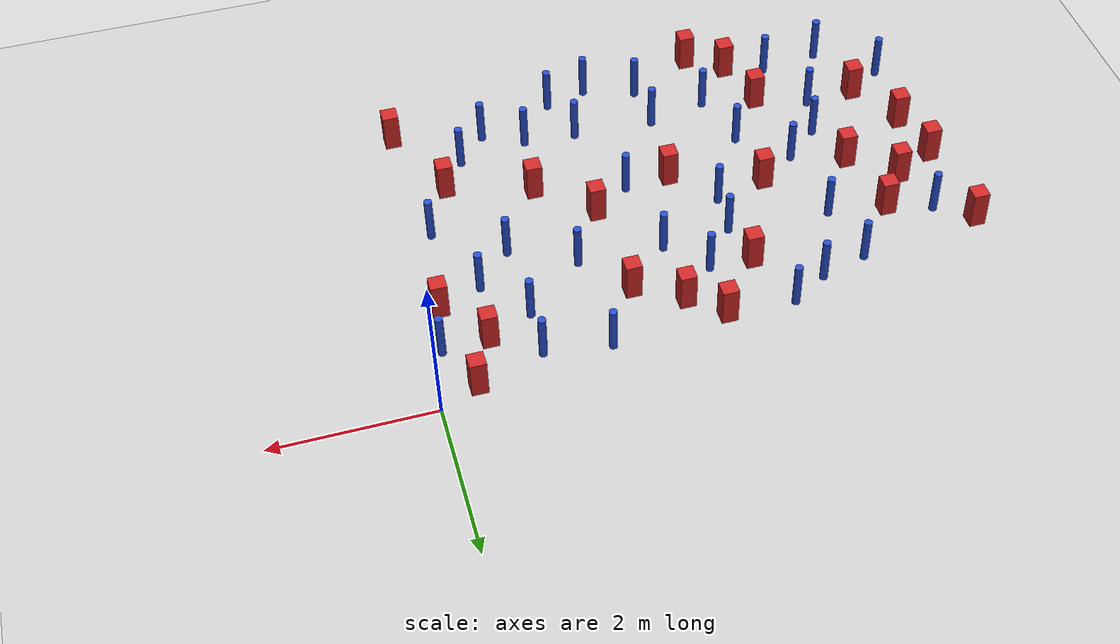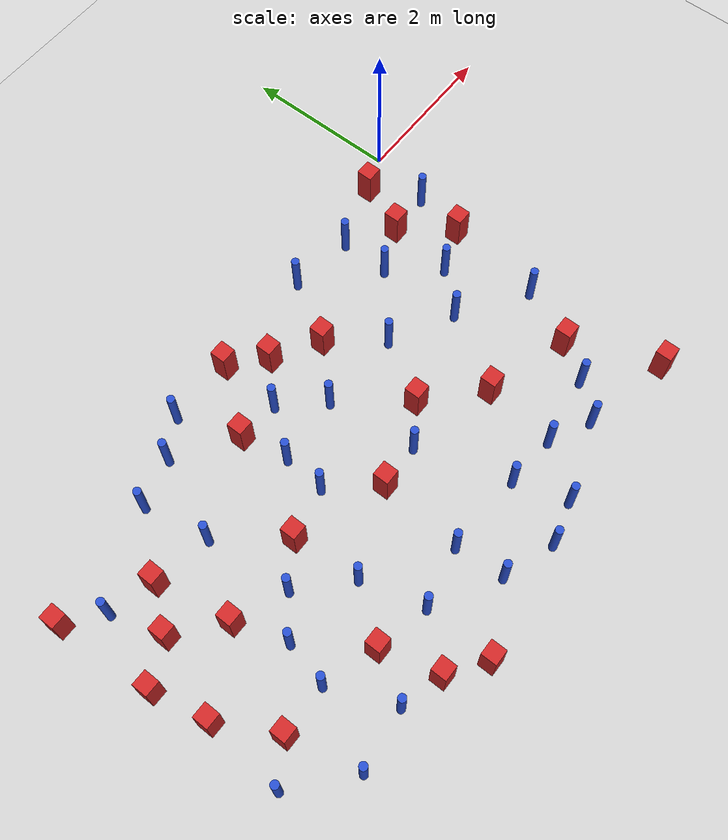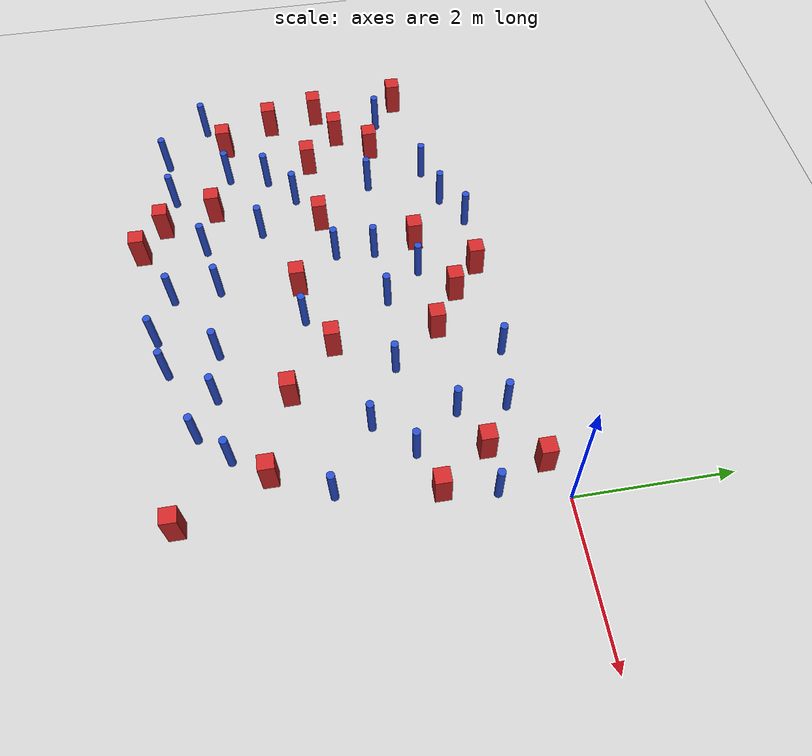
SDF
<sdf version="1.6">
 <world name="default">
  <model name="ground_plane">
   <static>1</static>
   <link name="link">
    <collision name="collision">
     <geometry><plane><normal>0 0 1</normal><size>100 100</size></plane></geometry>
     <surface><friction><ode><mu>100</mu><mu2>50</mu2></ode></friction></surface>
    </collision>
    <visual name="visual">
     <cast_shadows>0</cast_shadows>
     <geometry><plane><normal>0 0 1</normal><size>100 100</size></plane></geometry>
     <material>
      <ambient>1.0 1.0 1.0 1.0</ambient>
      <diffuse>0.8 0.8 0.8 1.0</diffuse>
      <specular>0.01 0.01 0.01 1.000000</specular>
     </material>
    </visual>
   </link>
  </model>
  <model name="square_post_obstacle1">
   <static>true</static>
   <pose>-4.90250389428 -4.65305402818 8.22691968438e-08 7.22125133819e-06 -7.54495500217e-07 2.29674213826e-05</pose>
   <link name="link">
    <pose>0 0 0.25 0 -0 0</pose>
    <inertial>
     <mass>100</mass>
     <inertia>
      <ixx>0.166667</ixx>
      <ixy>0</ixy>
      <ixz>0</ixz>
      <iyy>0.166667</iyy>
      <iyz>0</iyz>
      <izz>0.166667</izz>
     </inertia>
    </inertial>
    <collision name="collision"><geometry><box><size>.2 .2 .5</size></box></geometry></collision>
    <visual name="visual">
     <geometry><box><size>.2 .2 .5</size></box></geometry>
     <material>
      <script><name>Gazebo/Red</name><uri>file://media/materials/scripts/gazebo.material</uri></script>
     </material>
    </visual>
   </link>
  </model>
  <model name="square_post_obstacle2">
   <static>true</static>
   <pose>-0.308446318103 -1.4751853889 8.22691968438e-08 7.2212513382e-06 -7.54495500217e-07 2.29674213826e-05</pose>
   <link name="link">
    <pose>0 0 0.25 0 -0 0</pose>
    <inertial>
     <mass>100</mass>
     <inertia>
      <ixx>0.166667</ixx>
      <ixy>0</ixy>
      <ixz>0</ixz>
      <iyy>0.166667</iyy>
      <iyz>0</iyz>
      <izz>0.166667</izz>
     </inertia>
    </inertial>
    <collision name="collision"><geometry><box><size>.2 .2 .5</size></box></geometry></collision>
    <visual name="visual">
     <geometry><box><size>.2 .2 .5</size></box></geometry>
     <material>
      <script><name>Gazebo/Red</name><uri>file://media/materials/scripts/gazebo.material</uri></script>
     </material>
    </visual>
   </link>
  </model>
  <model name="pole_obstacle8">
   <static>true</static>
   <pose>-3.14532580014 -1.7083198443 2.88873142074e-08 -9.90536689395e-09 4.60219949e-07 -1.20965994953e-07</pose>
   <link name="link">
    <pose>0 0 0.3 0 -0 0</pose>
    <inertial>
     <mass>1</mass>
     <inertia><ixx>0.145833</ixx><ixy>0</ixy><ixz>0</ixz><iyy>0.145833</iyy><iyz>0</iyz><izz>0.125</izz></inertia>
    </inertial>
    <collision name="collision">
     <geometry><cylinder><radius>0.05</radius><length>.6</length></cylinder></geometry>
    </collision>
    <visual name="visual">
     <geometry><cylinder><radius>0.05</radius><length>.6</length></cylinder></geometry>
     <material>
      <script><name>Gazebo/Blue</name><uri>file://media/materials/scripts/gazebo.material</uri></script>
     </material>
    </visual>
   </link>
  </model>
  <model name="pole_obstacle9">
   <static>true</static>
   <pose>-5.29403124676 -1.7001412889 2.88873142074e-08 -9.90536689445e-09 4.60219948999e-07 -1.20965994956e-07</pose>
   <link name="link">
    <pose>0 0 0.3 0 -0 0</pose>
    <inertial>
     <mass>1</mass>
     <inertia><ixx>0.145833</ixx><ixy>0</ixy><ixz>0</ixz><iyy>0.145833</iyy><iyz>0</iyz><izz>0.125</izz></inertia>
    </inertial>
    <collision name="collision">
     <geometry><cylinder><radius>0.05</radius><length>.6</length></cylinder></geometry>
    </collision>
    <visual name="visual">
     <geometry><cylinder><radius>0.05</radius><length>.6</length></cylinder></geometry>
     <material>
      <script><name>Gazebo/Blue</name><uri>file://media/materials/scripts/gazebo.material</uri></script>
     </material>
    </visual>
   </link>
  </model>
  <model name="pole_obstacle10">
   <static>true</static>
   <pose>-1.29376996693 -2.16636897197 2.88873142074e-08 -9.90536689791e-09 4.6021994899e-07 -1.20965994959e-07</pose>
   <link name="link">
    <pose>0 0 0.3 0 -0 0</pose>
    <inertial>
     <mass>1</mass>
     <inertia><ixx>0.145833</ixx><ixy>0</ixy><ixz>0</ixz><iyy>0.145833</iyy><iyz>0</iyz><izz>0.125</izz></inertia>
    </inertial>
    <collision name="collision">
     <geometry><cylinder><radius>0.05</radius><length>.6</length></cylinder></geometry>
    </collision>
    <visual name="visual">
     <geometry><cylinder><radius>0.05</radius><length>.6</length></cylinder></geometry>
     <material>
      <script><name>Gazebo/Blue</name><uri>file://media/materials/scripts/gazebo.material</uri></script>
     </material>
    </visual>
   </link>
  </model>
  <model name="pole_obstacle11">
   <static>true</static>
   <pose>-2.08052585455 -1.75644054801 2.88873142074e-08 -9.90536689395e-09 4.60219949e-07 -1.20965994953e-07</pose>
   <link name="link">
    <pose>0 0 0.3 0 -0 0</pose>
    <inertial>
     <mass>1</mass>
     <inertia><ixx>0.145833</ixx><ixy>0</ixy><ixz>0</ixz><iyy>0.145833</iyy><iyz>0</iyz><izz>0.125</izz></inertia>
    </inertial>
    <collision name="collision">
     <geometry><cylinder><radius>0.05</radius><length>.6</length></cylinder></geometry>
    </collision>
    <visual name="visual">
     <geometry><cylinder><radius>0.05</radius><length>.6</length></cylinder></geometry>
     <material>
      <script><name>Gazebo/Blue</name><uri>file://media/materials/scripts/gazebo.material</uri></script>
     </material>
    </visual>
   </link>
  </model>
  <model name="square_post_obstacle11">
   <static>true</static>
   <pose>-0.48001669954 -0.202716693142 8.22691968438e-08 7.2212513382e-06 -7.54495500217e-07 2.29674213826e-05</pose>
   <link name="link">
    <pose>0 0 0.25 0 -0 0</pose>
    <inertial>
     <mass>100</mass>
     <inertia>
      <ixx>0.166667</ixx>
      <ixy>0</ixy>
      <ixz>0</ixz>
      <iyy>0.166667</iyy>
      <iyz>0</iyz>
      <izz>0.166667</izz>
     </inertia>
    </inertial>
    <collision name="collision"><geometry><box><size>.2 .2 .5</size></box></geometry></collision>
    <visual name="visual">
     <geometry><box><size>.2 .2 .5</size></box></geometry>
     <material>
      <script><name>Gazebo/Red</name><uri>file://media/materials/scripts/gazebo.material</uri></script>
     </material>
    </visual>
   </link>
  </model>
  <model name="pole_obstacle18">
   <static>true</static>
   <pose>-1.31122346371 -0.481827673898 2.88873142074e-08 -9.90536689816e-09 4.6021994899e-07 -1.2096599496e-07</pose>
   <link name="link">
    <pose>0 0 0.3 0 -0 0</pose>
    <inertial>
     <mass>1</mass>
     <inertia><ixx>0.145833</ixx><ixy>0</ixy><ixz>0</ixz><iyy>0.145833</iyy><iyz>0</iyz><izz>0.125</izz></inertia>
    </inertial>
    <collision name="collision">
     <geometry><cylinder><radius>0.05</radius><length>.6</length></cylinder></geometry>
    </collision>
    <visual name="visual">
     <geometry><cylinder><radius>0.05</radius><length>.6</length></cylinder></geometry>
     <material>
      <script><name>Gazebo/Blue</name><uri>file://media/materials/scripts/gazebo.material</uri></script>
     </material>
    </visual>
   </link>
  </model>
  <model name="square_post_obstacle17">
   <static>true</static>
   <pose>-4.45516431018 -4.96692957895 8.22691968438e-08 7.2212513382e-06 -7.54495500217e-07 2.29674213826e-05</pose>
   <link name="link">
    <pose>0 0 0.25 0 -0 0</pose>
    <inertial>
     <mass>100</mass>
     <inertia>
      <ixx>0.166667</ixx>
      <ixy>0</ixy>
      <ixz>0</ixz>
      <iyy>0.166667</iyy>
      <iyz>0</iyz>
      <izz>0.166667</izz>
     </inertia>
    </inertial>
    <collision name="collision"><geometry><box><size>.2 .2 .5</size></box></geometry></collision>
    <visual name="visual">
     <geometry><box><size>.2 .2 .5</size></box></geometry>
     <material>
      <script><name>Gazebo/Red</name><uri>file://media/materials/scripts/gazebo.material</uri></script>
     </material>
    </visual>
   </link>
  </model>
  <model name="pole_obstacle31">
   <static>true</static>
   <pose>-3.66986476978 -3.92634257438 2.88873142074e-08 -9.90536690232e-09 4.6021994898e-07 -1.20965994968e-07</pose>
   <link name="link">
    <pose>0 0 0.3 0 -0 0</pose>
    <inertial>
     <mass>1</mass>
     <inertia><ixx>0.145833</ixx><ixy>0</ixy><ixz>0</ixz><iyy>0.145833</iyy><iyz>0</iyz><izz>0.125</izz></inertia>
    </inertial>
    <collision name="collision">
     <geometry><cylinder><radius>0.05</radius><length>.6</length></cylinder></geometry>
    </collision>
    <visual name="visual">
     <geometry><cylinder><radius>0.05</radius><length>.6</length></cylinder></geometry>
     <material>
      <script><name>Gazebo/Blue</name><uri>file://media/materials/scripts/gazebo.material</uri></script>
     </material>
    </visual>
   </link>
  </model>
  <model name="square_post_obstacle24">
   <static>true</static>
   <pose>-4.69520800312 -2.4573369972 8.22691968438e-08 7.2212513382e-06 -7.54495500217e-07 2.29674213826e-05</pose>
   <link name="link">
    <pose>0 0 0.25 0 -0 0</pose>
    <inertial>
     <mass>100</mass>
     <inertia>
      <ixx>0.166667</ixx>
      <ixy>0</ixy>
      <ixz>0</ixz>
      <iyy>0.166667</iyy>
      <iyz>0</iyz>
      <izz>0.166667</izz>
     </inertia>
    </inertial>
    <collision name="collision"><geometry><box><size>.2 .2 .5</size></box></geometry></collision>
    <visual name="visual">
     <geometry><box><size>.2 .2 .5</size></box></geometry>
     <material>
      <script><name>Gazebo/Red</name><uri>file://media/materials/scripts/gazebo.material</uri></script>
     </material>
    </visual>
   </link>
  </model>
  <model name="square_post_obstacle25">
   <static>true</static>
   <pose>-6.99715480253 -1.08542244754 8.22691968438e-08 7.22125133819e-06 -7.54495500217e-07 2.29674213826e-05</pose>
   <link name="link">
    <pose>0 0 0.25 0 -0 0</pose>
    <inertial>
     <mass>100</mass>
     <inertia>
      <ixx>0.166667</ixx>
      <ixy>0</ixy>
      <ixz>0</ixz>
      <iyy>0.166667</iyy>
      <iyz>0</iyz>
      <izz>0.166667</izz>
     </inertia>
    </inertial>
    <collision name="collision"><geometry><box><size>.2 .2 .5</size></box></geometry></collision>
    <visual name="visual">
     <geometry><box><size>.2 .2 .5</size></box></geometry>
     <material>
      <script><name>Gazebo/Red</name><uri>file://media/materials/scripts/gazebo.material</uri></script>
     </material>
    </visual>
   </link>
  </model>
  <model name="pole_obstacle36">
   <static>true</static>
   <pose>-0.845985613089 -1.686237765 2.88873142074e-08 -9.90536689855e-09 4.60219948989e-07 -1.20965994962e-07</pose>
   <link name="link">
    <pose>0 0 0.3 0 -0 0</pose>
    <inertial>
     <mass>1</mass>
     <inertia><ixx>0.145833</ixx><ixy>0</ixy><ixz>0</ixz><iyy>0.145833</iyy><iyz>0</iyz><izz>0.125</izz></inertia>
    </inertial>
    <collision name="collision">
     <geometry><cylinder><radius>0.05</radius><length>.6</length></cylinder></geometry>
    </collision>
    <visual name="visual">
     <geometry><cylinder><radius>0.05</radius><length>.6</length></cylinder></geometry>
     <material>
      <script><name>Gazebo/Blue</name><uri>file://media/materials/scripts/gazebo.material</uri></script>
     </material>
    </visual>
   </link>
  </model>
  <model name="pole_obstacle39">
   <static>true</static>
   <pose>-5.7633618264 -3.71721501685 2.88873142074e-08 -9.90536690245e-09 4.6021994898e-07 -1.20965994966e-07</pose>
   <link name="link">
    <pose>0 0 0.3 0 -0 0</pose>
    <inertial>
     <mass>1</mass>
     <inertia><ixx>0.145833</ixx><ixy>0</ixy><ixz>0</ixz><iyy>0.145833</iyy><iyz>0</iyz><izz>0.125</izz></inertia>
    </inertial>
    <collision name="collision">
     <geometry><cylinder><radius>0.05</radius><length>.6</length></cylinder></geometry>
    </collision>
    <visual name="visual">
     <geometry><cylinder><radius>0.05</radius><length>.6</length></cylinder></geometry>
     <material>
      <script><name>Gazebo/Blue</name><uri>file://media/materials/scripts/gazebo.material</uri></script>
     </material>
    </visual>
   </link>
  </model>
  <model name="pole_obstacle40">
   <static>true</static>
   <pose>-6.1890119681 -4.60966932109 2.88873142074e-08 -9.90536690842e-09 4.60219948965e-07 -1.20965994976e-07</pose>
   <link name="link">
    <pose>0 0 0.3 0 -0 0</pose>
    <inertial>
     <mass>1</mass>
     <inertia><ixx>0.145833</ixx><ixy>0</ixy><ixz>0</ixz><iyy>0.145833</iyy><iyz>0</iyz><izz>0.125</izz></inertia>
    </inertial>
    <collision name="collision">
     <geometry><cylinder><radius>0.05</radius><length>.6</length></cylinder></geometry>
    </collision>
    <visual name="visual">
     <geometry><cylinder><radius>0.05</radius><length>.6</length></cylinder></geometry>
     <material>
      <script><name>Gazebo/Blue</name><uri>file://media/materials/scripts/gazebo.material</uri></script>
     </material>
    </visual>
   </link>
  </model>
  <model name="square_post_obstacle32">
   <static>true</static>
   <pose>-6.38428217243 -2.06748060398 8.22691968438e-08 7.2212513382e-06 -7.54495500217e-07 2.29674213826e-05</pose>
   <link name="link">
    <pose>0 0 0.25 0 -0 0</pose>
    <inertial>
     <mass>100</mass>
     <inertia>
      <ixx>0.166667</ixx>
      <ixy>0</ixy>
      <ixz>0</ixz>
      <iyy>0.166667</iyy>
      <iyz>0</iyz>
      <izz>0.166667</izz>
     </inertia>
    </inertial>
    <collision name="collision"><geometry><box><size>.2 .2 .5</size></box></geometry></collision>
    <visual name="visual">
     <geometry><box><size>.2 .2 .5</size></box></geometry>
     <material>
      <script><name>Gazebo/Red</name><uri>file://media/materials/scripts/gazebo.material</uri></script>
     </material>
    </visual>
   </link>
  </model>
  <model name="square_post_obstacle33">
   <static>true</static>
   <pose>-4.11699143183 -1.19094280833 8.22691968438e-08 7.2212513382e-06 -7.54495500217e-07 2.29674213826e-05</pose>
   <link name="link">
    <pose>0 0 0.25 0 -0 0</pose>
    <inertial>
     <mass>100</mass>
     <inertia>
      <ixx>0.166667</ixx>
      <ixy>0</ixy>
      <ixz>0</ixz>
      <iyy>0.166667</iyy>
      <iyz>0</iyz>
      <izz>0.166667</izz>
     </inertia>
    </inertial>
    <collision name="collision"><geometry><box><size>.2 .2 .5</size></box></geometry></collision>
    <visual name="visual">
     <geometry><box><size>.2 .2 .5</size></box></geometry>
     <material>
      <script><name>Gazebo/Red</name><uri>file://media/materials/scripts/gazebo.material</uri></script>
     </material>
    </visual>
   </link>
  </model>
  <model name="pole_obstacle43">
   <static>true</static>
   <pose>-0.468239323174 -2.71466232398 2.88873142074e-08 -9.90536689335e-09 4.60219949001e-07 -1.20965994953e-07</pose>
   <link name="link">
    <pose>0 0 0.3 0 -0 0</pose>
    <inertial>
     <mass>1</mass>
     <inertia><ixx>0.145833</ixx><ixy>0</ixy><ixz>0</ixz><iyy>0.145833</iyy><iyz>0</iyz><izz>0.125</izz></inertia>
    </inertial>
    <collision name="collision">
     <geometry><cylinder><radius>0.05</radius><length>.6</length></cylinder></geometry>
    </collision>
    <visual name="visual">
     <geometry><cylinder><radius>0.05</radius><length>.6</length></cylinder></geometry>
     <material>
      <script><name>Gazebo/Blue</name><uri>file://media/materials/scripts/gazebo.material</uri></script>
     </material>
    </visual>
   </link>
  </model>
  <model name="pole_obstacle47">
   <static>true</static>
   <pose>-4.39533489209 -0.41681256304 2.88873142074e-08 -9.90536689981e-09 4.60219948986e-07 -1.20965994962e-07</pose>
   <link name="link">
    <pose>0 0 0.3 0 -0 0</pose>
    <inertial>
     <mass>1</mass>
     <inertia><ixx>0.145833</ixx><ixy>0</ixy><ixz>0</ixz><iyy>0.145833</iyy><iyz>0</iyz><izz>0.125</izz></inertia>
    </inertial>
    <collision name="collision">
     <geometry><cylinder><radius>0.05</radius><length>.6</length></cylinder></geometry>
    </collision>
    <visual name="visual">
     <geometry><cylinder><radius>0.05</radius><length>.6</length></cylinder></geometry>
     <material>
      <script><name>Gazebo/Blue</name><uri>file://media/materials/scripts/gazebo.material</uri></script>
     </material>
    </visual>
   </link>
  </model>
  <model name="pole_obstacle65">
   <static>true</static>
   <pose>-3.58580292451 -1.22319693321 2.88873142074e-08 -9.90536689395e-09 4.60219949e-07 -1.20965994953e-07</pose>
   <link name="link">
    <pose>0 0 0.3 0 -0 0</pose>
    <inertial>
     <mass>1</mass>
     <inertia><ixx>0.145833</ixx><ixy>0</ixy><ixz>0</ixz><iyy>0.145833</iyy><iyz>0</iyz><izz>0.125</izz></inertia>
    </inertial>
    <collision name="collision">
     <geometry><cylinder><radius>0.05</radius><length>.6</length></cylinder></geometry>
    </collision>
    <visual name="visual">
     <geometry><cylinder><radius>0.05</radius><length>.6</length></cylinder></geometry>
     <material>
      <script><name>Gazebo/Blue</name><uri>file://media/materials/scripts/gazebo.material</uri></script>
     </material>
    </visual>
   </link>
  </model>
  <model name="pole_obstacle74">
   <static>true</static>
   <pose>-2.64215423078 -3.97562874621 2.88873142074e-08 -9.90536690455e-09 4.60219948975e-07 -1.20965994972e-07</pose>
   <link name="link">
    <pose>0 0 0.3 0 -0 0</pose>
    <inertial>
     <mass>1</mass>
     <inertia><ixx>0.145833</ixx><ixy>0</ixy><ixz>0</ixz><iyy>0.145833</iyy><iyz>0</iyz><izz>0.125</izz></inertia>
    </inertial>
    <collision name="collision">
     <geometry><cylinder><radius>0.05</radius><length>.6</length></cylinder></geometry>
    </collision>
    <visual name="visual">
     <geometry><cylinder><radius>0.05</radius><length>.6</length></cylinder></geometry>
     <material>
      <script><name>Gazebo/Blue</name><uri>file://media/materials/scripts/gazebo.material</uri></script>
     </material>
    </visual>
   </link>
  </model>
  <model name="square_post_obstacle70">
   <static>true</static>
   <pose>-6.76990471203 -3.03877279179 8.22691968438e-08 7.2212513382e-06 -7.54495500217e-07 2.29674213826e-05</pose>
   <link name="link">
    <pose>0 0 0.25 0 -0 0</pose>
    <inertial>
     <mass>100</mass>
     <inertia>
      <ixx>0.166667</ixx>
      <ixy>0</ixy>
      <ixz>0</ixz>
      <iyy>0.166667</iyy>
      <iyz>0</iyz>
      <izz>0.166667</izz>
     </inertia>
    </inertial>
    <collision name="collision"><geometry><box><size>.2 .2 .5</size></box></geometry></collision>
    <visual name="visual">
     <geometry><box><size>.2 .2 .5</size></box></geometry>
     <material>
      <script><name>Gazebo/Red</name><uri>file://media/materials/scripts/gazebo.material</uri></script>
     </material>
    </visual>
   </link>
  </model>
  <model name="square_post_obstacle71">
   <static>true</static>
   <pose>-2.52225515285 -2.5053306626 8.22691968438e-08 7.2212513382e-06 -7.54495500217e-07 2.29674213826e-05</pose>
   <link name="link">
    <pose>0 0 0.25 0 -0 0</pose>
    <inertial>
     <mass>100</mass>
     <inertia>
      <ixx>0.166667</ixx>
      <ixy>0</ixy>
      <ixz>0</ixz>
      <iyy>0.166667</iyy>
      <iyz>0</iyz>
      <izz>0.166667</izz>
     </inertia>
    </inertial>
    <collision name="collision"><geometry><box><size>.2 .2 .5</size></box></geometry></collision>
    <visual name="visual">
     <geometry><box><size>.2 .2 .5</size></box></geometry>
     <material>
      <script><name>Gazebo/Red</name><uri>file://media/materials/scripts/gazebo.material</uri></script>
     </material>
    </visual>
   </link>
  </model>
  <model name="pole_obstacle83">
   <static>true</static>
   <pose>-4.62339866084 -3.30456656948 2.88873142074e-08 -9.90536690245e-09 4.6021994898e-07 -1.20965994966e-07</pose>
   <link name="link">
    <pose>0 0 0.3 0 -0 0</pose>
    <inertial>
     <mass>1</mass>
     <inertia><ixx>0.145833</ixx><ixy>0</ixy><ixz>0</ixz><iyy>0.145833</iyy><iyz>0</iyz><izz>0.125</izz></inertia>
    </inertial>
    <collision name="collision">
     <geometry><cylinder><radius>0.05</radius><length>.6</length></cylinder></geometry>
    </collision>
    <visual name="visual">
     <geometry><cylinder><radius>0.05</radius><length>.6</length></cylinder></geometry>
     <material>
      <script><name>Gazebo/Blue</name><uri>file://media/materials/scripts/gazebo.material</uri></script>
     </material>
    </visual>
   </link>
  </model>
  <model name="square_post_obstacle73">
   <static>true</static>
   <pose>-5.83771528304 -2.52779519146 8.22691968438e-08 7.2212513382e-06 -7.54495500217e-07 2.29674213826e-05</pose>
   <link name="link">
    <pose>0 0 0.25 0 -0 0</pose>
    <inertial>
     <mass>100</mass>
     <inertia>
      <ixx>0.166667</ixx>
      <ixy>0</ixy>
      <ixz>0</ixz>
      <iyy>0.166667</iyy>
      <iyz>0</iyz>
      <izz>0.166667</izz>
     </inertia>
    </inertial>
    <collision name="collision"><geometry><box><size>.2 .2 .5</size></box></geometry></collision>
    <visual name="visual">
     <geometry><box><size>.2 .2 .5</size></box></geometry>
     <material>
      <script><name>Gazebo/Red</name><uri>file://media/materials/scripts/gazebo.material</uri></script>
     </material>
    </visual>
   </link>
  </model>
  <model name="pole_obstacle89">
   <static>true</static>
   <pose>-5.19149411698 -2.78249253676 2.88873142074e-08 -9.90536690245e-09 4.6021994898e-07 -1.20965994966e-07</pose>
   <link name="link">
    <pose>0 0 0.3 0 -0 0</pose>
    <inertial>
     <mass>1</mass>
     <inertia><ixx>0.145833</ixx><ixy>0</ixy><ixz>0</ixz><iyy>0.145833</iyy><iyz>0</iyz><izz>0.125</izz></inertia>
    </inertial>
    <collision name="collision">
     <geometry><cylinder><radius>0.05</radius><length>.6</length></cylinder></geometry>
    </collision>
    <visual name="visual">
     <geometry><cylinder><radius>0.05</radius><length>.6</length></cylinder></geometry>
     <material>
      <script><name>Gazebo/Blue</name><uri>file://media/materials/scripts/gazebo.material</uri></script>
     </material>
    </visual>
   </link>
  </model>
  <model name="pole_obstacle93">
   <static>true</static>
   <pose>-6.58297774825 -1.41544815508 2.88873142074e-08 -9.90536689445e-09 4.60219948999e-07 -1.20965994956e-07</pose>
   <link name="link">
    <pose>0 0 0.3 0 -0 0</pose>
    <inertial>
     <mass>1</mass>
     <inertia><ixx>0.145833</ixx><ixy>0</ixy><ixz>0</ixz><iyy>0.145833</iyy><iyz>0</iyz><izz>0.125</izz></inertia>
    </inertial>
    <collision name="collision">
     <geometry><cylinder><radius>0.05</radius><length>.6</length></cylinder></geometry>
    </collision>
    <visual name="visual">
     <geometry><cylinder><radius>0.05</radius><length>.6</length></cylinder></geometry>
     <material>
      <script><name>Gazebo/Blue</name><uri>file://media/materials/scripts/gazebo.material</uri></script>
     </material>
    </visual>
   </link>
  </model>
  <model name="square_post_obstacle92">
   <static>true</static>
   <pose>-6.39411485083 -3.74123339045 8.22691968438e-08 7.2212513382e-06 -7.54495500217e-07 2.29674213826e-05</pose>
   <link name="link">
    <pose>0 0 0.25 0 -0 0</pose>
    <inertial>
     <mass>100</mass>
     <inertia>
      <ixx>0.166667</ixx>
      <ixy>0</ixy>
      <ixz>0</ixz>
      <iyy>0.166667</iyy>
      <iyz>0</iyz>
      <izz>0.166667</izz>
     </inertia>
    </inertial>
    <collision name="collision"><geometry><box><size>.2 .2 .5</size></box></geometry></collision>
    <visual name="visual">
     <geometry><box><size>.2 .2 .5</size></box></geometry>
     <material>
      <script><name>Gazebo/Red</name><uri>file://media/materials/scripts/gazebo.material</uri></script>
     </material>
    </visual>
   </link>
  </model>
  <model name="square_post_obstacle95">
   <static>true</static>
   <pose>-0.807671067905 -3.4315773066 8.22691968438e-08 7.2212513382e-06 -7.54495500217e-07 2.29674213826e-05</pose>
   <link name="link">
    <pose>0 0 0.25 0 -0 0</pose>
    <inertial>
     <mass>100</mass>
     <inertia>
      <ixx>0.166667</ixx>
      <ixy>0</ixy>
      <ixz>0</ixz>
      <iyy>0.166667</iyy>
      <iyz>0</iyz>
      <izz>0.166667</izz>
     </inertia>
    </inertial>
    <collision name="collision"><geometry><box><size>.2 .2 .5</size></box></geometry></collision>
    <visual name="visual">
     <geometry><box><size>.2 .2 .5</size></box></geometry>
     <material>
      <script><name>Gazebo/Red</name><uri>file://media/materials/scripts/gazebo.material</uri></script>
     </material>
    </visual>
   </link>
  </model>
  <model name="pole_obstacle102">
   <static>true</static>
   <pose>-2.99999289444 -2.83109625751 2.88873142074e-08 -9.90536690232e-09 4.6021994898e-07 -1.20965994968e-07</pose>
   <link name="link">
    <pose>0 0 0.3 0 -0 0</pose>
    <inertial>
     <mass>1</mass>
     <inertia><ixx>0.145833</ixx><ixy>0</ixy><ixz>0</ixz><iyy>0.145833</iyy><iyz>0</iyz><izz>0.125</izz></inertia>
    </inertial>
    <collision name="collision">
     <geometry><cylinder><radius>0.05</radius><length>.6</length></cylinder></geometry>
    </collision>
    <visual name="visual">
     <geometry><cylinder><radius>0.05</radius><length>.6</length></cylinder></geometry>
     <material>
      <script><name>Gazebo/Blue</name><uri>file://media/materials/scripts/gazebo.material</uri></script>
     </material>
    </visual>
   </link>
  </model>
  <model name="square_post_obstacle111">
   <static>true</static>
   <pose>-5.09500419492 -3.94005390068 8.22691968438e-08 7.22125133819e-06 -7.54495500217e-07 2.29674213826e-05</pose>
   <link name="link">
    <pose>0 0 0.25 0 -0 0</pose>
    <inertial>
     <mass>100</mass>
     <inertia>
      <ixx>0.166667</ixx>
      <ixy>0</ixy>
      <ixz>0</ixz>
      <iyy>0.166667</iyy>
      <iyz>0</iyz>
      <izz>0.166667</izz>
     </inertia>
    </inertial>
    <collision name="collision"><geometry><box><size>.2 .2 .5</size></box></geometry></collision>
    <visual name="visual">
     <geometry><box><size>.2 .2 .5</size></box></geometry>
     <material>
      <script><name>Gazebo/Red</name><uri>file://media/materials/scripts/gazebo.material</uri></script>
     </material>
    </visual>
   </link>
  </model>
  <model name="pole_obstacle116">
   <static>true</static>
   <pose>-4.05134943315 -2.30843746079 2.88873142074e-08 -9.90536690245e-09 4.6021994898e-07 -1.20965994966e-07</pose>
   <link name="link">
    <pose>0 0 0.3 0 -0 0</pose>
    <inertial>
     <mass>1</mass>
     <inertia><ixx>0.145833</ixx><ixy>0</ixy><ixz>0</ixz><iyy>0.145833</iyy><iyz>0</iyz><izz>0.125</izz></inertia>
    </inertial>
    <collision name="collision">
     <geometry><cylinder><radius>0.05</radius><length>.6</length></cylinder></geometry>
    </collision>
    <visual name="visual">
     <geometry><cylinder><radius>0.05</radius><length>.6</length></cylinder></geometry>
     <material>
      <script><name>Gazebo/Blue</name><uri>file://media/materials/scripts/gazebo.material</uri></script>
     </material>
    </visual>
   </link>
  </model>
  <model name="pole_obstacle122">
   <static>true</static>
   <pose>-1.32309958075 -1.10722712176 2.88873142074e-08 -9.90536689672e-09 4.60219948993e-07 -1.20965994959e-07</pose>
   <link name="link">
    <pose>0 0 0.3 0 -0 0</pose>
    <inertial>
     <mass>1</mass>
     <inertia><ixx>0.145833</ixx><ixy>0</ixy><ixz>0</ixz><iyy>0.145833</iyy><iyz>0</iyz><izz>0.125</izz></inertia>
    </inertial>
    <collision name="collision">
     <geometry><cylinder><radius>0.05</radius><length>.6</length></cylinder></geometry>
    </collision>
    <visual name="visual">
     <geometry><cylinder><radius>0.05</radius><length>.6</length></cylinder></geometry>
     <material>
      <script><name>Gazebo/Blue</name><uri>file://media/materials/scripts/gazebo.material</uri></script>
     </material>
    </visual>
   </link>
  </model>
  <model name="pole_obstacle123">
   <static>true</static>
   <pose>-2.12375288016 -0.369285289775 2.88873142074e-08 -9.90536689307e-09 4.60219949002e-07 -1.20965994954e-07</pose>
   <link name="link">
    <pose>0 0 0.3 0 -0 0</pose>
    <inertial>
     <mass>1</mass>
     <inertia><ixx>0.145833</ixx><ixy>0</ixy><ixz>0</ixz><iyy>0.145833</iyy><iyz>0</iyz><izz>0.125</izz></inertia>
    </inertial>
    <collision name="collision">
     <geometry><cylinder><radius>0.05</radius><length>.6</length></cylinder></geometry>
    </collision>
    <visual name="visual">
     <geometry><cylinder><radius>0.05</radius><length>.6</length></cylinder></geometry>
     <material>
      <script><name>Gazebo/Blue</name><uri>file://media/materials/scripts/gazebo.material</uri></script>
     </material>
    </visual>
   </link>
  </model>
  <model name="pole_obstacle126">
   <static>true</static>
   <pose>-5.42852909034 -4.51044811579 2.88873142074e-08 -9.90536690842e-09 4.60219948965e-07 -1.20965994976e-07</pose>
   <link name="link">
    <pose>0 0 0.3 0 -0 0</pose>
    <inertial>
     <mass>1</mass>
     <inertia><ixx>0.145833</ixx><ixy>0</ixy><ixz>0</ixz><iyy>0.145833</iyy><iyz>0</iyz><izz>0.125</izz></inertia>
    </inertial>
    <collision name="collision">
     <geometry><cylinder><radius>0.05</radius><length>.6</length></cylinder></geometry>
    </collision>
    <visual name="visual">
     <geometry><cylinder><radius>0.05</radius><length>.6</length></cylinder></geometry>
     <material>
      <script><name>Gazebo/Blue</name><uri>file://media/materials/scripts/gazebo.material</uri></script>
     </material>
    </visual>
   </link>
  </model>
  <model name="pole_obstacle130">
   <static>true</static>
   <pose>-4.41940902588 -4.0909203812 2.88873142074e-08 -9.90536690842e-09 4.60219948965e-07 -1.20965994976e-07</pose>
   <link name="link">
    <pose>0 0 0.3 0 -0 0</pose>
    <inertial>
     <mass>1</mass>
     <inertia><ixx>0.145833</ixx><ixy>0</ixy><ixz>0</ixz><iyy>0.145833</iyy><iyz>0</iyz><izz>0.125</izz></inertia>
    </inertial>
    <collision name="collision">
     <geometry><cylinder><radius>0.05</radius><length>.6</length></cylinder></geometry>
    </collision>
    <visual name="visual">
     <geometry><cylinder><radius>0.05</radius><length>.6</length></cylinder></geometry>
     <material>
      <script><name>Gazebo/Blue</name><uri>file://media/materials/scripts/gazebo.material</uri></script>
     </material>
    </visual>
   </link>
  </model>
  <model name="square_post_obstacle128">
   <static>true</static>
   <pose>-2.57802505148 -1.13892832872 8.22691968438e-08 7.2212513382e-06 -7.54495500217e-07 2.29674213826e-05</pose>
   <link name="link">
    <pose>0 0 0.25 0 -0 0</pose>
    <inertial>
     <mass>100</mass>
     <inertia>
      <ixx>0.166667</ixx>
      <ixy>0</ixy>
      <ixz>0</ixz>
      <iyy>0.166667</iyy>
      <iyz>0</iyz>
      <izz>0.166667</izz>
     </inertia>
    </inertial>
    <collision name="collision"><geometry><box><size>.2 .2 .5</size></box></geometry></collision>
    <visual name="visual">
     <geometry><box><size>.2 .2 .5</size></box></geometry>
     <material>
      <script><name>Gazebo/Red</name><uri>file://media/materials/scripts/gazebo.material</uri></script>
     </material>
    </visual>
   </link>
  </model>
  <model name="square_post_obstacle130">
   <static>true</static>
   <pose>-3.14482023223 -0.795310296461 8.22691968438e-08 7.2212513382e-06 -7.54495500217e-07 2.29674213826e-05</pose>
   <link name="link">
    <pose>0 0 0.25 0 -0 0</pose>
    <inertial>
     <mass>100</mass>
     <inertia>
      <ixx>0.166667</ixx>
      <ixy>0</ixy>
      <ixz>0</ixz>
      <iyy>0.166667</iyy>
      <iyz>0</iyz>
      <izz>0.166667</izz>
     </inertia>
    </inertial>
    <collision name="collision"><geometry><box><size>.2 .2 .5</size></box></geometry></collision>
    <visual name="visual">
     <geometry><box><size>.2 .2 .5</size></box></geometry>
     <material>
      <script><name>Gazebo/Red</name><uri>file://media/materials/scripts/gazebo.material</uri></script>
     </material>
    </visual>
   </link>
  </model>
  <model name="pole_obstacle139">
   <static>true</static>
   <pose>-2.97321988332 -4.76730106355 2.88873142074e-08 -9.90536689859e-09 4.60219948989e-07 -1.20965994961e-07</pose>
   <link name="link">
    <pose>0 0 0.3 0 -0 0</pose>
    <inertial>
     <mass>1</mass>
     <inertia><ixx>0.145833</ixx><ixy>0</ixy><ixz>0</ixz><iyy>0.145833</iyy><iyz>0</iyz><izz>0.125</izz></inertia>
    </inertial>
    <collision name="collision">
     <geometry><cylinder><radius>0.05</radius><length>.6</length></cylinder></geometry>
    </collision>
    <visual name="visual">
     <geometry><cylinder><radius>0.05</radius><length>.6</length></cylinder></geometry>
     <material>
      <script><name>Gazebo/Blue</name><uri>file://media/materials/scripts/gazebo.material</uri></script>
     </material>
    </visual>
   </link>
  </model>
  <model name="pole_obstacle146">
   <static>true</static>
   <pose>-1.10596092318 -3.87887900118 2.88873142074e-08 -9.90536689791e-09 4.6021994899e-07 -1.20965994959e-07</pose>
   <link name="link">
    <pose>0 0 0.3 0 -0 0</pose>
    <inertial>
     <mass>1</mass>
     <inertia><ixx>0.145833</ixx><ixy>0</ixy><ixz>0</ixz><iyy>0.145833</iyy><iyz>0</iyz><izz>0.125</izz></inertia>
    </inertial>
    <collision name="collision">
     <geometry><cylinder><radius>0.05</radius><length>.6</length></cylinder></geometry>
    </collision>
    <visual name="visual">
     <geometry><cylinder><radius>0.05</radius><length>.6</length></cylinder></geometry>
     <material>
      <script><name>Gazebo/Blue</name><uri>file://media/materials/scripts/gazebo.material</uri></script>
     </material>
    </visual>
   </link>
  </model>
  <model name="square_post_obstacle160">
   <static>true</static>
   <pose>-1.86937038108 -3.10740246124 8.22691968438e-08 7.2212513382e-06 -7.54495500217e-07 2.29674213826e-05</pose>
   <link name="link">
    <pose>0 0 0.25 0 -0 0</pose>
    <inertial>
     <mass>100</mass>
     <inertia>
      <ixx>0.166667</ixx>
      <ixy>0</ixy>
      <ixz>0</ixz>
      <iyy>0.166667</iyy>
      <iyz>0</iyz>
      <izz>0.166667</izz>
     </inertia>
    </inertial>
    <collision name="collision"><geometry><box><size>.2 .2 .5</size></box></geometry></collision>
    <visual name="visual">
     <geometry><box><size>.2 .2 .5</size></box></geometry>
     <material>
      <script><name>Gazebo/Red</name><uri>file://media/materials/scripts/gazebo.material</uri></script>
     </material>
    </visual>
   </link>
  </model>
  <model name="square_post_obstacle165">
   <static>true</static>
   <pose>-6.9078566823 -2.33493683075 8.22691968438e-08 7.2212513382e-06 -7.54495500217e-07 2.29674213826e-05</pose>
   <link name="link">
    <pose>0 0 0.25 0 -0 0</pose>
    <inertial>
     <mass>100</mass>
     <inertia>
      <ixx>0.166667</ixx>
      <ixy>0</ixy>
      <ixz>0</ixz>
      <iyy>0.166667</iyy>
      <iyz>0</iyz>
      <izz>0.166667</izz>
     </inertia>
    </inertial>
    <collision name="collision"><geometry><box><size>.2 .2 .5</size></box></geometry></collision>
    <visual name="visual">
     <geometry><box><size>.2 .2 .5</size></box></geometry>
     <material>
      <script><name>Gazebo/Red</name><uri>file://media/materials/scripts/gazebo.material</uri></script>
     </material>
    </visual>
   </link>
  </model>
  <model name="square_post_obstacle168">
   <static>true</static>
   <pose>-0.340743177679 -4.52479874385 8.22691968438e-08 7.2212513382e-06 -7.54495500217e-07 2.29674213826e-05</pose>
   <link name="link">
    <pose>0 0 0.25 0 -0 0</pose>
    <inertial>
     <mass>100</mass>
     <inertia>
      <ixx>0.166667</ixx>
      <ixy>0</ixy>
      <ixz>0</ixz>
      <iyy>0.166667</iyy>
      <iyz>0</iyz>
      <izz>0.166667</izz>
     </inertia>
    </inertial>
    <collision name="collision"><geometry><box><size>.2 .2 .5</size></box></geometry></collision>
    <visual name="visual">
     <geometry><box><size>.2 .2 .5</size></box></geometry>
     <material>
      <script><name>Gazebo/Red</name><uri>file://media/materials/scripts/gazebo.material</uri></script>
     </material>
    </visual>
   </link>
  </model>
  <model name="pole_obstacle171">
   <static>true</static>
   <pose>-4.0068963319 -1.77428216294 2.88873142074e-08 -9.9053668946e-09 4.60219948998e-07 -1.20965994956e-07</pose>
   <link name="link">
    <pose>0 0 0.3 0 -0 0</pose>
    <inertial>
     <mass>1</mass>
     <inertia><ixx>0.145833</ixx><ixy>0</ixy><ixz>0</ixz><iyy>0.145833</iyy><iyz>0</iyz><izz>0.125</izz></inertia>
    </inertial>
    <collision name="collision">
     <geometry><cylinder><radius>0.05</radius><length>.6</length></cylinder></geometry>
    </collision>
    <visual name="visual">
     <geometry><cylinder><radius>0.05</radius><length>.6</length></cylinder></geometry>
     <material>
      <script><name>Gazebo/Blue</name><uri>file://media/materials/scripts/gazebo.material</uri></script>
     </material>
    </visual>
   </link>
  </model>
  <model name="pole_obstacle172">
   <static>true</static>
   <pose>-4.85289577533 -0.700504817476 2.88873142074e-08 -9.90536689837e-09 4.60219948989e-07 -1.2096599496e-07</pose>
   <link name="link">
    <pose>0 0 0.3 0 -0 0</pose>
    <inertial>
     <mass>1</mass>
     <inertia><ixx>0.145833</ixx><ixy>0</ixy><ixz>0</ixz><iyy>0.145833</iyy><iyz>0</iyz><izz>0.125</izz></inertia>
    </inertial>
    <collision name="collision">
     <geometry><cylinder><radius>0.05</radius><length>.6</length></cylinder></geometry>
    </collision>
    <visual name="visual">
     <geometry><cylinder><radius>0.05</radius><length>.6</length></cylinder></geometry>
     <material>
      <script><name>Gazebo/Blue</name><uri>file://media/materials/scripts/gazebo.material</uri></script>
     </material>
    </visual>
   </link>
  </model>
  <model name="square_post_obstacle180">
   <static>true</static>
   <pose>-3.5682304627 -2.86166575395 8.22691968438e-08 7.2212513382e-06 -7.54495500217e-07 2.29674213826e-05</pose>
   <link name="link">
    <pose>0 0 0.25 0 -0 0</pose>
    <inertial>
     <mass>100</mass>
     <inertia>
      <ixx>0.166667</ixx>
      <ixy>0</ixy>
      <ixz>0</ixz>
      <iyy>0.166667</iyy>
      <iyz>0</iyz>
      <izz>0.166667</izz>
     </inertia>
    </inertial>
    <collision name="collision"><geometry><box><size>.2 .2 .5</size></box></geometry></collision>
    <visual name="visual">
     <geometry><box><size>.2 .2 .5</size></box></geometry>
     <material>
      <script><name>Gazebo/Red</name><uri>file://media/materials/scripts/gazebo.material</uri></script>
     </material>
    </visual>
   </link>
  </model>
  <model name="pole_obstacle181">
   <static>true</static>
   <pose>-1.47099704122 -4.2713020705 2.88873142074e-08 -9.90536689852e-09 4.60219948989e-07 -1.2096599496e-07</pose>
   <link name="link">
    <pose>0 0 0.3 0 -0 0</pose>
    <inertial>
     <mass>1</mass>
     <inertia><ixx>0.145833</ixx><ixy>0</ixy><ixz>0</ixz><iyy>0.145833</iyy><iyz>0</iyz><izz>0.125</izz></inertia>
    </inertial>
    <collision name="collision">
     <geometry><cylinder><radius>0.05</radius><length>.6</length></cylinder></geometry>
    </collision>
    <visual name="visual">
     <geometry><cylinder><radius>0.05</radius><length>.6</length></cylinder></geometry>
     <material>
      <script><name>Gazebo/Blue</name><uri>file://media/materials/scripts/gazebo.material</uri></script>
     </material>
    </visual>
   </link>
  </model>
  <model name="pole_obstacle189">
   <static>true</static>
   <pose>-2.44534181845 -4.62590270027 2.88873142074e-08 -9.90536689859e-09 4.60219948989e-07 -1.20965994961e-07</pose>
   <link name="link">
    <pose>0 0 0.3 0 -0 0</pose>
    <inertial>
     <mass>1</mass>
     <inertia><ixx>0.145833</ixx><ixy>0</ixy><ixz>0</ixz><iyy>0.145833</iyy><iyz>0</iyz><izz>0.125</izz></inertia>
    </inertial>
    <collision name="collision">
     <geometry><cylinder><radius>0.05</radius><length>.6</length></cylinder></geometry>
    </collision>
    <visual name="visual">
     <geometry><cylinder><radius>0.05</radius><length>.6</length></cylinder></geometry>
     <material>
      <script><name>Gazebo/Blue</name><uri>file://media/materials/scripts/gazebo.material</uri></script>
     </material>
    </visual>
   </link>
  </model>
  <model name="pole_obstacle191">
   <static>true</static>
   <pose>-5.62659733642 -3.16229907536 2.88873142074e-08 -9.90536690245e-09 4.6021994898e-07 -1.20965994966e-07</pose>
   <link name="link">
    <pose>0 0 0.3 0 -0 0</pose>
    <inertial>
     <mass>1</mass>
     <inertia><ixx>0.145833</ixx><ixy>0</ixy><ixz>0</ixz><iyy>0.145833</iyy><iyz>0</iyz><izz>0.125</izz></inertia>
    </inertial>
    <collision name="collision">
     <geometry><cylinder><radius>0.05</radius><length>.6</length></cylinder></geometry>
    </collision>
    <visual name="visual">
     <geometry><cylinder><radius>0.05</radius><length>.6</length></cylinder></geometry>
     <material>
      <script><name>Gazebo/Blue</name><uri>file://media/materials/scripts/gazebo.material</uri></script>
     </material>
    </visual>
   </link>
  </model>
  <model name="pole_obstacle192">
   <static>true</static>
   <pose>-1.98169155663 -4.02082135154 2.88873142074e-08 -9.90536689867e-09 4.60219948988e-07 -1.2096599496e-07</pose>
   <link name="link">
    <pose>0 0 0.3 0 -0 0</pose>
    <inertial>
     <mass>1</mass>
     <inertia><ixx>0.145833</ixx><ixy>0</ixy><ixz>0</ixz><iyy>0.145833</iyy><iyz>0</iyz><izz>0.125</izz></inertia>
    </inertial>
    <collision name="collision">
     <geometry><cylinder><radius>0.05</radius><length>.6</length></cylinder></geometry>
    </collision>
    <visual name="visual">
     <geometry><cylinder><radius>0.05</radius><length>.6</length></cylinder></geometry>
     <material>
      <script><name>Gazebo/Blue</name><uri>file://media/materials/scripts/gazebo.material</uri></script>
     </material>
    </visual>
   </link>
  </model>
  <model name="pole_obstacle198">
   <static>true</static>
   <pose>-0.19226113106 -0.827964025745 2.88873142074e-08 -9.90536690341e-09 4.60219948977e-07 -1.20965994968e-07</pose>
   <link name="link">
    <pose>0 0 0.3 0 -0 0</pose>
    <inertial>
     <mass>1</mass>
     <inertia><ixx>0.145833</ixx><ixy>0</ixy><ixz>0</ixz><iyy>0.145833</iyy><iyz>0</iyz><izz>0.125</izz></inertia>
    </inertial>
    <collision name="collision">
     <geometry><cylinder><radius>0.05</radius><length>.6</length></cylinder></geometry>
    </collision>
    <visual name="visual">
     <geometry><cylinder><radius>0.05</radius><length>.6</length></cylinder></geometry>
     <material>
      <script><name>Gazebo/Blue</name><uri>file://media/materials/scripts/gazebo.material</uri></script>
     </material>
    </visual>
   </link>
  </model>
  <model name="square_post_obstacle212">
   <static>true</static>
   <pose>-6.01506588171 -1.57986157565 8.22691968438e-08 7.2212513382e-06 -7.54495500217e-07 2.29674213826e-05</pose>
   <link name="link">
    <pose>0 0 0.25 0 -0 0</pose>
    <inertial>
     <mass>100</mass>
     <inertia>
      <ixx>0.166667</ixx>
      <ixy>0</ixy>
      <ixz>0</ixz>
      <iyy>0.166667</iyy>
      <iyz>0</iyz>
      <izz>0.166667</izz>
     </inertia>
    </inertial>
    <collision name="collision"><geometry><box><size>.2 .2 .5</size></box></geometry></collision>
    <visual name="visual">
     <geometry><box><size>.2 .2 .5</size></box></geometry>
     <material>
      <script><name>Gazebo/Red</name><uri>file://media/materials/scripts/gazebo.material</uri></script>
     </material>
    </visual>
   </link>
  </model>
  <model name="square_post_obstacle215">
   <static>true</static>
   <pose>-0.762298001208 -0.851503886996 8.22691968438e-08 7.2212513382e-06 -7.54495500217e-07 2.29674213826e-05</pose>
   <link name="link">
    <pose>0 0 0.25 0 -0 0</pose>
    <inertial>
     <mass>100</mass>
     <inertia>
      <ixx>0.166667</ixx>
      <ixy>0</ixy>
      <ixz>0</ixz>
      <iyy>0.166667</iyy>
      <iyz>0</iyz>
      <izz>0.166667</izz>
     </inertia>
    </inertial>
    <collision name="collision"><geometry><box><size>.2 .2 .5</size></box></geometry></collision>
    <visual name="visual">
     <geometry><box><size>.2 .2 .5</size></box></geometry>
     <material>
      <script><name>Gazebo/Red</name><uri>file://media/materials/scripts/gazebo.material</uri></script>
     </material>
    </visual>
   </link>
  </model>
  <model name="square_post_obstacle216">
   <static>true</static>
   <pose>-3.54444540358 -0.438380667715 8.22691968438e-08 7.22125133819e-06 -7.54495500217e-07 2.29674213826e-05</pose>
   <link name="link">
    <pose>0 0 0.25 0 -0 0</pose>
    <inertial>
     <mass>100</mass>
     <inertia>
      <ixx>0.166667</ixx>
      <ixy>0</ixy>
      <ixz>0</ixz>
      <iyy>0.166667</iyy>
      <iyz>0</iyz>
      <izz>0.166667</izz>
     </inertia>
    </inertial>
    <collision name="collision"><geometry><box><size>.2 .2 .5</size></box></geometry></collision>
    <visual name="visual">
     <geometry><box><size>.2 .2 .5</size></box></geometry>
     <material>
      <script><name>Gazebo/Red</name><uri>file://media/materials/scripts/gazebo.material</uri></script>
     </material>
    </visual>
   </link>
  </model>
  <model name="pole_obstacle220">
   <static>true</static>
   <pose>-3.62156999087 -4.54519997959 2.88873142074e-08 -9.90536689859e-09 4.60219948989e-07 -1.20965994961e-07</pose>
   <link name="link">
    <pose>0 0 0.3 0 -0 0</pose>
    <inertial>
     <mass>1</mass>
     <inertia><ixx>0.145833</ixx><ixy>0</ixy><ixz>0</ixz><iyy>0.145833</iyy><iyz>0</iyz><izz>0.125</izz></inertia>
    </inertial>
    <collision name="collision">
     <geometry><cylinder><radius>0.05</radius><length>.6</length></cylinder></geometry>
    </collision>
    <visual name="visual">
     <geometry><cylinder><radius>0.05</radius><length>.6</length></cylinder></geometry>
     <material>
      <script><name>Gazebo/Blue</name><uri>file://media/materials/scripts/gazebo.material</uri></script>
     </material>
    </visual>
   </link>
  </model>
  <model name="pole_obstacle224">
   <static>true</static>
   <pose>-6.86020999087 -4.03219997959 2.88873142074e-08 -9.90536690819e-09 4.60219948966e-07 -1.20965994975e-07</pose>
   <link name="link">
    <pose>0 0 0.3 0 -0 0</pose>
    <inertial>
     <mass>1</mass>
     <inertia><ixx>0.145833</ixx><ixy>0</ixy><ixz>0</ixz><iyy>0.145833</iyy><iyz>0</iyz><izz>0.125</izz></inertia>
    </inertial>
    <collision name="collision">
     <geometry><cylinder><radius>0.05</radius><length>.6</length></cylinder></geometry>
    </collision>
    <visual name="visual">
     <geometry><cylinder><radius>0.05</radius><length>.6</length></cylinder></geometry>
     <material>
      <script><name>Gazebo/Blue</name><uri>file://media/materials/scripts/gazebo.material</uri></script>
     </material>
    </visual>
   </link>
  </model>
  <model name="pole_obstacle237">
   <static>true</static>
   <pose>-5.44577999087 -0.876254979588 2.88873142074e-08 -9.90536689837e-09 4.60219948989e-07 -1.2096599496e-07</pose>
   <link name="link">
    <pose>0 0 0.3 0 -0 0</pose>
    <inertial>
     <mass>1</mass>
     <inertia><ixx>0.145833</ixx><ixy>0</ixy><ixz>0</ixz><iyy>0.145833</iyy><iyz>0</iyz><izz>0.125</izz></inertia>
    </inertial>
    <collision name="collision">
     <geometry><cylinder><radius>0.05</radius><length>.6</length></cylinder></geometry>
    </collision>
    <visual name="visual">
     <geometry><cylinder><radius>0.05</radius><length>.6</length></cylinder></geometry>
     <material>
      <script><name>Gazebo/Blue</name><uri>file://media/materials/scripts/gazebo.material</uri></script>
     </material>
    </visual>
   </link>
  </model>
 </world>
</sdf>
